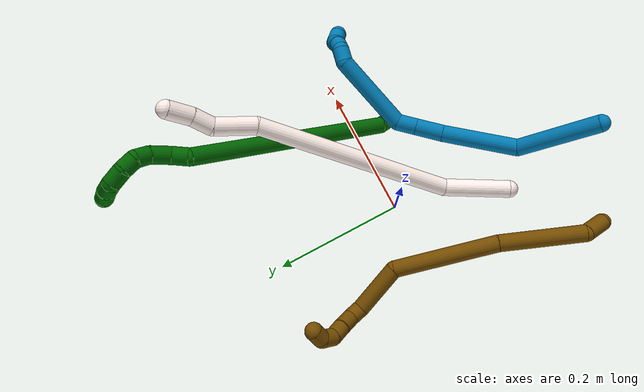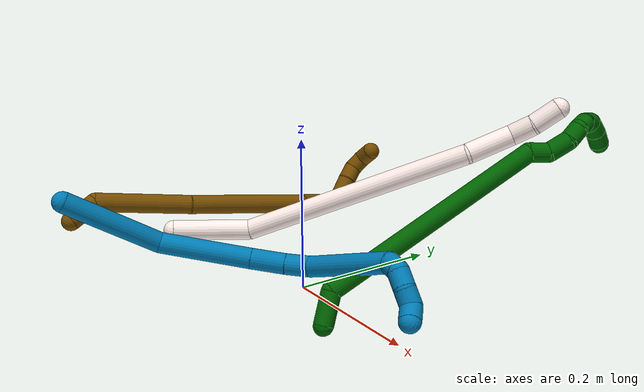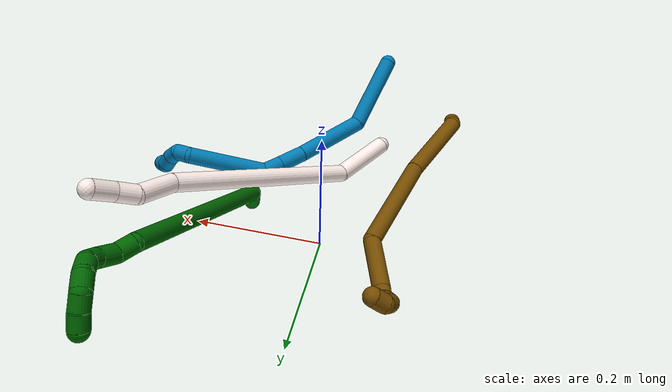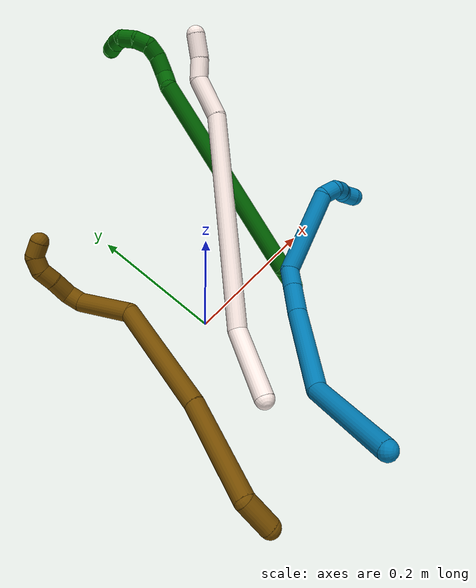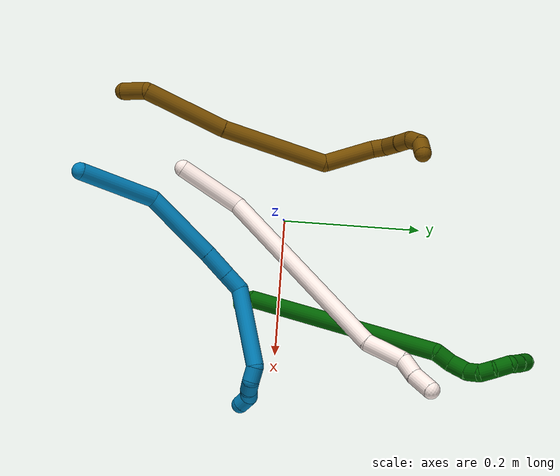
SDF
<sdf version="1.7">
 <world name="default">
  <model name="6">
   <static>0</static>
   <link name="6">
    <collision name="collision-cylinder-e_1_1_4">
     <pose>0.002577 0.004636 0.020138 -0.226278 0.124054 -0.014113</pose>
     <geometry><cylinder><radius>0.0125</radius><length>0.041649</length></cylinder></geometry>
     <surface>
      <friction><ode><mu>1.16</mu><mu2>1.16</mu2><slip1>0</slip1><slip2>0</slip2></ode></friction>
      <contact><ode><kp>1e+06</kp><kd>1</kd><max_vel>0</max_vel><min_depth>0.001</min_depth></ode></contact>
     </surface>
    </collision>
    <visual name="visual-cylinder-e_1_1_4">
     <pose>0.002577 0.004636 0.020138 -0.226278 0.124054 -0.014113</pose>
     <geometry><cylinder><radius>0.0125</radius><length>0.041649</length></cylinder></geometry>
     <material><ambient>0 0.392157 0.003922 1</ambient></material>
    </visual>
    <collision name="collision-cylinder-e_2_4_5">
     <pose>0.071267 0.116793 0.121629 -0.923064 0.455899 -0.22974</pose>
     <geometry><cylinder><radius>0.0125</radius><length>0.300334</length></cylinder></geometry>
     <surface>
      <friction><ode><mu>1.16</mu><mu2>1.16</mu2><slip1>0</slip1><slip2>0</slip2></ode></friction>
      <contact><ode><kp>1e+06</kp><kd>1</kd><max_vel>0</max_vel><min_depth>0.001</min_depth></ode></contact>
     </surface>
    </collision>
    <visual name="visual-cylinder-e_2_4_5">
     <pose>0.071267 0.116793 0.121629 -0.923064 0.455899 -0.22974</pose>
     <geometry><cylinder><radius>0.0125</radius><length>0.300334</length></cylinder></geometry>
     <material><ambient>0 0.392157 0.003922 1</ambient></material>
    </visual>
    <collision name="collision-cylinder-e_3_5_6">
     <pose>0.145441 0.23368 0.202651 -1.60614 0.710205 -0.733565</pose>
     <geometry><cylinder><radius>0.0125</radius><length>0.024722</length></cylinder></geometry>
     <surface>
      <friction><ode><mu>1.16</mu><mu2>1.16</mu2><slip1>0</slip1><slip2>0</slip2></ode></friction>
      <contact><ode><kp>1e+06</kp><kd>1</kd><max_vel>0</max_vel><min_depth>0.001</min_depth></ode></contact>
     </surface>
    </collision>
    <visual name="visual-cylinder-e_3_5_6">
     <pose>0.145441 0.23368 0.202651 -1.60614 0.710205 -0.733565</pose>
     <geometry><cylinder><radius>0.0125</radius><length>0.024722</length></cylinder></geometry>
     <material><ambient>0 0.392157 0.003922 1</ambient></material>
    </visual>
    <collision name="collision-cylinder-e_4_6_7">
     <pose>0.162188 0.252143 0.209539 -0.899912 0.642338 -0.318653</pose>
     <geometry><cylinder><radius>0.0125</radius><length>0.029006</length></cylinder></geometry>
     <surface>
      <friction><ode><mu>1.16</mu><mu2>1.16</mu2><slip1>0</slip1><slip2>0</slip2></ode></friction>
      <contact><ode><kp>1e+06</kp><kd>1</kd><max_vel>0</max_vel><min_depth>0.001</min_depth></ode></contact>
     </surface>
    </collision>
    <visual name="visual-cylinder-e_4_6_7">
     <pose>0.162188 0.252143 0.209539 -0.899912 0.642338 -0.318653</pose>
     <geometry><cylinder><radius>0.0125</radius><length>0.029006</length></cylinder></geometry>
     <material><ambient>0 0.392157 0.003922 1</ambient></material>
    </visual>
    <collision name="collision-cylinder-e_5_7_8">
     <pose>0.173909 0.267641 0.224087 -0.718083 0.302121 -0.114135</pose>
     <geometry><cylinder><radius>0.0125</radius><length>0.020386</length></cylinder></geometry>
     <surface>
      <friction><ode><mu>1.16</mu><mu2>1.16</mu2><slip1>0</slip1><slip2>0</slip2></ode></friction>
      <contact><ode><kp>1e+06</kp><kd>1</kd><max_vel>0</max_vel><min_depth>0.001</min_depth></ode></contact>
     </surface>
    </collision>
    <visual name="visual-cylinder-e_5_7_8">
     <pose>0.173909 0.267641 0.224087 -0.718083 0.302121 -0.114135</pose>
     <geometry><cylinder><radius>0.0125</radius><length>0.020386</length></cylinder></geometry>
     <material><ambient>0 0.392157 0.003922 1</ambient></material>
    </visual>
    <collision name="collision-cylinder-e_6_8_9">
     <pose>0.175725 0.283153 0.236109 -1.09505 -0.11824 0.072144</pose>
     <geometry><cylinder><radius>0.0125</radius><length>0.020638</length></cylinder></geometry>
     <surface>
      <friction><ode><mu>1.16</mu><mu2>1.16</mu2><slip1>0</slip1><slip2>0</slip2></ode></friction>
      <contact><ode><kp>1e+06</kp><kd>1</kd><max_vel>0</max_vel><min_depth>0.001</min_depth></ode></contact>
     </surface>
    </collision>
    <visual name="visual-cylinder-e_6_8_9">
     <pose>0.175725 0.283153 0.236109 -1.09505 -0.11824 0.072144</pose>
     <geometry><cylinder><radius>0.0125</radius><length>0.020638</length></cylinder></geometry>
     <material><ambient>0 0.392157 0.003922 1</ambient></material>
    </visual>
    <collision name="collision-cylinder-e_7_9_10">
     <pose>0.17197 0.303337 0.242158 -1.44896 -0.223603 0.198073</pose>
     <geometry><cylinder><radius>0.0125</radius><length>0.022886</length></cylinder></geometry>
     <surface>
      <friction><ode><mu>1.16</mu><mu2>1.16</mu2><slip1>0</slip1><slip2>0</slip2></ode></friction>
      <contact><ode><kp>1e+06</kp><kd>1</kd><max_vel>0</max_vel><min_depth>0.001</min_depth></ode></contact>
     </surface>
    </collision>
    <visual name="visual-cylinder-e_7_9_10">
     <pose>0.17197 0.303337 0.242158 -1.44896 -0.223603 0.198073</pose>
     <geometry><cylinder><radius>0.0125</radius><length>0.022886</length></cylinder></geometry>
     <material><ambient>0 0.392157 0.003922 1</ambient></material>
    </visual>
    <collision name="collision-cylinder-e_8_10_11">
     <pose>0.16783 0.322691 0.237966 -2.16128 -0.159522 0.297385</pose>
     <geometry><cylinder><radius>0.0125</radius><length>0.020186</length></cylinder></geometry>
     <surface>
      <friction><ode><mu>1.16</mu><mu2>1.16</mu2><slip1>0</slip1><slip2>0</slip2></ode></friction>
      <contact><ode><kp>1e+06</kp><kd>1</kd><max_vel>0</max_vel><min_depth>0.001</min_depth></ode></contact>
     </surface>
    </collision>
    <visual name="visual-cylinder-e_8_10_11">
     <pose>0.16783 0.322691 0.237966 -2.16128 -0.159522 0.297385</pose>
     <geometry><cylinder><radius>0.0125</radius><length>0.020186</length></cylinder></geometry>
     <material><ambient>0 0.392157 0.003922 1</ambient></material>
    </visual>
    <collision name="collision-cylinder-e_9_11_2">
     <pose>0.16393 0.338355 0.22593 -2.29149 -0.229475 0.498608</pose>
     <geometry><cylinder><radius>0.0125</radius><length>0.020192</length></cylinder></geometry>
     <surface>
      <friction><ode><mu>1.16</mu><mu2>1.16</mu2><slip1>0</slip1><slip2>0</slip2></ode></friction>
      <contact><ode><kp>1e+06</kp><kd>1</kd><max_vel>0</max_vel><min_depth>0.001</min_depth></ode></contact>
     </surface>
    </collision>
    <visual name="visual-cylinder-e_9_11_2">
     <pose>0.16393 0.338355 0.22593 -2.29149 -0.229475 0.498608</pose>
     <geometry><cylinder><radius>0.0125</radius><length>0.020192</length></cylinder></geometry>
     <material><ambient>0 0.392157 0.003922 1</ambient></material>
    </visual>
    <collision name="collision-sphere-2">
     <pose>0.161633 0.345742 0.219442 0 -0 0</pose>
     <geometry><sphere><radius>0.0125</radius></sphere></geometry>
     <surface>
      <friction><ode><mu>1.16</mu><mu2>1.16</mu2><slip1>0</slip1><slip2>0</slip2></ode></friction>
      <contact><ode><kp>1e+06</kp><kd>1</kd><max_vel>0</max_vel><min_depth>0.001</min_depth></ode></contact>
     </surface>
    </collision>
    <visual name="visual-sphere-2">
     <pose>0.161633 0.345742 0.219442 0 -0 0</pose>
     <geometry><sphere><radius>0.0125</radius></sphere></geometry>
     <material><ambient>0 0.392157 0.003922 1</ambient></material>
    </visual>
    <collision name="collision-sphere-11">
     <pose>0.166226 0.330968 0.232418 0 -0 0</pose>
     <geometry><sphere><radius>0.0125</radius></sphere></geometry>
     <surface>
      <friction><ode><mu>1.16</mu><mu2>1.16</mu2><slip1>0</slip1><slip2>0</slip2></ode></friction>
      <contact><ode><kp>1e+06</kp><kd>1</kd><max_vel>0</max_vel><min_depth>0.001</min_depth></ode></contact>
     </surface>
    </collision>
    <visual name="visual-sphere-11">
     <pose>0.166226 0.330968 0.232418 0 -0 0</pose>
     <geometry><sphere><radius>0.0125</radius></sphere></geometry>
     <material><ambient>0 0.392157 0.003922 1</ambient></material>
    </visual>
    <collision name="collision-sphere-10">
     <pose>0.169433 0.314413 0.243514 0 -0 0</pose>
     <geometry><sphere><radius>0.0125</radius></sphere></geometry>
     <surface>
      <friction><ode><mu>1.16</mu><mu2>1.16</mu2><slip1>0</slip1><slip2>0</slip2></ode></friction>
      <contact><ode><kp>1e+06</kp><kd>1</kd><max_vel>0</max_vel><min_depth>0.001</min_depth></ode></contact>
     </surface>
    </collision>
    <visual name="visual-sphere-10">
     <pose>0.169433 0.314413 0.243514 0 -0 0</pose>
     <geometry><sphere><radius>0.0125</radius></sphere></geometry>
     <material><ambient>0 0.392157 0.003922 1</ambient></material>
    </visual>
    <collision name="collision-sphere-9">
     <pose>0.174508 0.292262 0.240802 0 -0 0</pose>
     <geometry><sphere><radius>0.0125</radius></sphere></geometry>
     <surface>
      <friction><ode><mu>1.16</mu><mu2>1.16</mu2><slip1>0</slip1><slip2>0</slip2></ode></friction>
      <contact><ode><kp>1e+06</kp><kd>1</kd><max_vel>0</max_vel><min_depth>0.001</min_depth></ode></contact>
     </surface>
    </collision>
    <visual name="visual-sphere-9">
     <pose>0.174508 0.292262 0.240802 0 -0 0</pose>
     <geometry><sphere><radius>0.0125</radius></sphere></geometry>
     <material><ambient>0 0.392157 0.003922 1</ambient></material>
    </visual>
    <collision name="collision-sphere-4">
     <pose>0.005153 0.009272 0.040275 0 -0 0</pose>
     <geometry><sphere><radius>0.0125</radius></sphere></geometry>
     <surface>
      <friction><ode><mu>1.16</mu><mu2>1.16</mu2><slip1>0</slip1><slip2>0</slip2></ode></friction>
      <contact><ode><kp>1e+06</kp><kd>1</kd><max_vel>0</max_vel><min_depth>0.001</min_depth></ode></contact>
     </surface>
    </collision>
    <visual name="visual-sphere-4">
     <pose>0.005153 0.009272 0.040275 0 -0 0</pose>
     <geometry><sphere><radius>0.0125</radius></sphere></geometry>
     <material><ambient>0 0.392157 0.003922 1</ambient></material>
    </visual>
    <collision name="collision-sphere-1">
     <geometry><sphere><radius>0.0125</radius></sphere></geometry>
     <surface>
      <friction><ode><mu>1.16</mu><mu2>1.16</mu2><slip1>0</slip1><slip2>0</slip2></ode></friction>
      <contact><ode><kp>1e+06</kp><kd>1</kd><max_vel>0</max_vel><min_depth>0.001</min_depth></ode></contact>
     </surface>
    </collision>
    <visual name="visual-sphere-1">
     <geometry><sphere><radius>0.0125</radius></sphere></geometry>
     <material><ambient>0 0.392157 0.003922 1</ambient></material>
    </visual>
    <collision name="collision-sphere-8">
     <pose>0.176942 0.274044 0.231416 0 -0 0</pose>
     <geometry><sphere><radius>0.0125</radius></sphere></geometry>
     <surface>
      <friction><ode><mu>1.16</mu><mu2>1.16</mu2><slip1>0</slip1><slip2>0</slip2></ode></friction>
      <contact><ode><kp>1e+06</kp><kd>1</kd><max_vel>0</max_vel><min_depth>0.001</min_depth></ode></contact>
     </surface>
    </collision>
    <visual name="visual-sphere-8">
     <pose>0.176942 0.274044 0.231416 0 -0 0</pose>
     <geometry><sphere><radius>0.0125</radius></sphere></geometry>
     <material><ambient>0 0.392157 0.003922 1</ambient></material>
    </visual>
    <collision name="collision-sphere-5">
     <pose>0.137381 0.224314 0.202983 0 -0 0</pose>
     <geometry><sphere><radius>0.0125</radius></sphere></geometry>
     <surface>
      <friction><ode><mu>1.16</mu><mu2>1.16</mu2><slip1>0</slip1><slip2>0</slip2></ode></friction>
      <contact><ode><kp>1e+06</kp><kd>1</kd><max_vel>0</max_vel><min_depth>0.001</min_depth></ode></contact>
     </surface>
    </collision>
    <visual name="visual-sphere-5">
     <pose>0.137381 0.224314 0.202983 0 -0 0</pose>
     <geometry><sphere><radius>0.0125</radius></sphere></geometry>
     <material><ambient>0 0.392157 0.003922 1</ambient></material>
    </visual>
    <collision name="collision-sphere-6">
     <pose>0.1535 0.243047 0.20232 0 -0 0</pose>
     <geometry><sphere><radius>0.0125</radius></sphere></geometry>
     <surface>
      <friction><ode><mu>1.16</mu><mu2>1.16</mu2><slip1>0</slip1><slip2>0</slip2></ode></friction>
      <contact><ode><kp>1e+06</kp><kd>1</kd><max_vel>0</max_vel><min_depth>0.001</min_depth></ode></contact>
     </surface>
    </collision>
    <visual name="visual-sphere-6">
     <pose>0.1535 0.243047 0.20232 0 -0 0</pose>
     <geometry><sphere><radius>0.0125</radius></sphere></geometry>
     <material><ambient>0 0.392157 0.003922 1</ambient></material>
    </visual>
    <collision name="collision-sphere-7">
     <pose>0.170877 0.261238 0.216759 0 -0 0</pose>
     <geometry><sphere><radius>0.0125</radius></sphere></geometry>
     <surface>
      <friction><ode><mu>1.16</mu><mu2>1.16</mu2><slip1>0</slip1><slip2>0</slip2></ode></friction>
      <contact><ode><kp>1e+06</kp><kd>1</kd><max_vel>0</max_vel><min_depth>0.001</min_depth></ode></contact>
     </surface>
    </collision>
    <visual name="visual-sphere-7">
     <pose>0.170877 0.261238 0.216759 0 -0 0</pose>
     <geometry><sphere><radius>0.0125</radius></sphere></geometry>
     <material><ambient>0 0.392157 0.003922 1</ambient></material>
    </visual>
    <inertial>
     <pose>0.095234 0.159898 0.145609 0 -0 0</pose>
     <mass>0.5</mass>
     <inertia>
      <ixx>0.001551</ixx>
      <ixy>0</ixy>
      <ixz>0</ixz>
      <iyy>0.001089</iyy>
      <iyz>0</iyz>
      <izz>-0.002622</izz>
     </inertia>
    </inertial>
   </link>
   <pose>0.127208 -0.054743 0.011497 -0.252518 -0.296772 0.177598</pose>
  </model>
  <model name="9">
   <static>0</static>
   <link name="9">
    <collision name="collision-cylinder-e_1_1_4">
     <pose>0.020699 0.021693 -0.052297 -2.74839 0.350505 -1.45343</pose>
     <geometry><cylinder><radius>0.0125</radius><length>0.120565</length></cylinder></geometry>
     <surface>
      <friction><ode><mu>1.16</mu><mu2>1.16</mu2><slip1>0</slip1><slip2>0</slip2></ode></friction>
      <contact><ode><kp>1e+06</kp><kd>1</kd><max_vel>0</max_vel><min_depth>0.001</min_depth></ode></contact>
     </surface>
    </collision>
    <visual name="visual-cylinder-e_1_1_4">
     <pose>0.020699 0.021693 -0.052297 -2.74839 0.350505 -1.45343</pose>
     <geometry><cylinder><radius>0.0125</radius><length>0.120565</length></cylinder></geometry>
     <material><ambient>0 0.490196 0.709804 1</ambient></material>
    </visual>
    <collision name="collision-cylinder-e_2_4_5">
     <pose>0.068956 0.083285 -0.131057 -2.15644 0.522263 -0.923958</pose>
     <geometry><cylinder><radius>0.0125</radius><length>0.110485</length></cylinder></geometry>
     <surface>
      <friction><ode><mu>1.16</mu><mu2>1.16</mu2><slip1>0</slip1><slip2>0</slip2></ode></friction>
      <contact><ode><kp>1e+06</kp><kd>1</kd><max_vel>0</max_vel><min_depth>0.001</min_depth></ode></contact>
     </surface>
    </collision>
    <visual name="visual-cylinder-e_2_4_5">
     <pose>0.068956 0.083285 -0.131057 -2.15644 0.522263 -0.923958</pose>
     <geometry><cylinder><radius>0.0125</radius><length>0.110485</length></cylinder></geometry>
     <material><ambient>0 0.490196 0.709804 1</ambient></material>
    </visual>
    <collision name="collision-cylinder-e_3_5_6">
     <pose>0.106951 0.138283 -0.166123 -2.08862 0.540909 -0.890192</pose>
     <geometry><cylinder><radius>0.0125</radius><length>0.040541</length></cylinder></geometry>
     <surface>
      <friction><ode><mu>1.16</mu><mu2>1.16</mu2><slip1>0</slip1><slip2>0</slip2></ode></friction>
      <contact><ode><kp>1e+06</kp><kd>1</kd><max_vel>0</max_vel><min_depth>0.001</min_depth></ode></contact>
     </surface>
    </collision>
    <visual name="visual-cylinder-e_3_5_6">
     <pose>0.106951 0.138283 -0.166123 -2.08862 0.540909 -0.890192</pose>
     <geometry><cylinder><radius>0.0125</radius><length>0.040541</length></cylinder></geometry>
     <material><ambient>0 0.490196 0.709804 1</ambient></material>
    </visual>
    <collision name="collision-cylinder-e_4_6_7">
     <pose>0.124481 0.164813 -0.180651 -2.04913 0.50348 -0.800465</pose>
     <geometry><cylinder><radius>0.0125</radius><length>0.029401</length></cylinder></geometry>
     <surface>
      <friction><ode><mu>1.16</mu><mu2>1.16</mu2><slip1>0</slip1><slip2>0</slip2></ode></friction>
      <contact><ode><kp>1e+06</kp><kd>1</kd><max_vel>0</max_vel><min_depth>0.001</min_depth></ode></contact>
     </surface>
    </collision>
    <visual name="visual-cylinder-e_4_6_7">
     <pose>0.124481 0.164813 -0.180651 -2.04913 0.50348 -0.800465</pose>
     <geometry><cylinder><radius>0.0125</radius><length>0.029401</length></cylinder></geometry>
     <material><ambient>0 0.490196 0.709804 1</ambient></material>
    </visual>
    <collision name="collision-cylinder-e_5_7_8">
     <pose>0.164771 0.223013 -0.174201 -1.31209 0.601391 -0.46865</pose>
     <geometry><cylinder><radius>0.0125</radius><length>0.117347</length></cylinder></geometry>
     <surface>
      <friction><ode><mu>1.16</mu><mu2>1.16</mu2><slip1>0</slip1><slip2>0</slip2></ode></friction>
      <contact><ode><kp>1e+06</kp><kd>1</kd><max_vel>0</max_vel><min_depth>0.001</min_depth></ode></contact>
     </surface>
    </collision>
    <visual name="visual-cylinder-e_5_7_8">
     <pose>0.164771 0.223013 -0.174201 -1.31209 0.601391 -0.46865</pose>
     <geometry><cylinder><radius>0.0125</radius><length>0.117347</length></cylinder></geometry>
     <material><ambient>0 0.490196 0.709804 1</ambient></material>
    </visual>
    <collision name="collision-cylinder-e_6_8_9">
     <pose>0.207527 0.273092 -0.15798 -0.710781 1.08296 -0.439248</pose>
     <geometry><cylinder><radius>0.0125</radius><length>0.021645</length></cylinder></geometry>
     <surface>
      <friction><ode><mu>1.16</mu><mu2>1.16</mu2><slip1>0</slip1><slip2>0</slip2></ode></friction>
      <contact><ode><kp>1e+06</kp><kd>1</kd><max_vel>0</max_vel><min_depth>0.001</min_depth></ode></contact>
     </surface>
    </collision>
    <visual name="visual-cylinder-e_6_8_9">
     <pose>0.207527 0.273092 -0.15798 -0.710781 1.08296 -0.439248</pose>
     <geometry><cylinder><radius>0.0125</radius><length>0.021645</length></cylinder></geometry>
     <material><ambient>0 0.490196 0.709804 1</ambient></material>
    </visual>
    <collision name="collision-cylinder-e_7_9_10">
     <pose>0.226886 0.275099 -0.155678 2.44024 1.36761 2.2978</pose>
     <geometry><cylinder><radius>0.0125</radius><length>0.020009</length></cylinder></geometry>
     <surface>
      <friction><ode><mu>1.16</mu><mu2>1.16</mu2><slip1>0</slip1><slip2>0</slip2></ode></friction>
      <contact><ode><kp>1e+06</kp><kd>1</kd><max_vel>0</max_vel><min_depth>0.001</min_depth></ode></contact>
     </surface>
    </collision>
    <visual name="visual-cylinder-e_7_9_10">
     <pose>0.226886 0.275099 -0.155678 2.44024 1.36761 2.2978</pose>
     <geometry><cylinder><radius>0.0125</radius><length>0.020009</length></cylinder></geometry>
     <material><ambient>0 0.490196 0.709804 1</ambient></material>
    </visual>
    <collision name="collision-cylinder-e_8_10_11">
     <pose>0.245575 0.271846 -0.16137 2.70219 1.09462 2.43912</pose>
     <geometry><cylinder><radius>0.0125</radius><length>0.020006</length></cylinder></geometry>
     <surface>
      <friction><ode><mu>1.16</mu><mu2>1.16</mu2><slip1>0</slip1><slip2>0</slip2></ode></friction>
      <contact><ode><kp>1e+06</kp><kd>1</kd><max_vel>0</max_vel><min_depth>0.001</min_depth></ode></contact>
     </surface>
    </collision>
    <visual name="visual-cylinder-e_8_10_11">
     <pose>0.245575 0.271846 -0.16137 2.70219 1.09462 2.43912</pose>
     <geometry><cylinder><radius>0.0125</radius><length>0.020006</length></cylinder></geometry>
     <material><ambient>0 0.490196 0.709804 1</ambient></material>
    </visual>
    <collision name="collision-cylinder-e_9_11_2">
     <pose>0.263292 0.266526 -0.162243 0.799445 1.08151 0.496866</pose>
     <geometry><cylinder><radius>0.0125</radius><length>0.020001</length></cylinder></geometry>
     <surface>
      <friction><ode><mu>1.16</mu><mu2>1.16</mu2><slip1>0</slip1><slip2>0</slip2></ode></friction>
      <contact><ode><kp>1e+06</kp><kd>1</kd><max_vel>0</max_vel><min_depth>0.001</min_depth></ode></contact>
     </surface>
    </collision>
    <visual name="visual-cylinder-e_9_11_2">
     <pose>0.263292 0.266526 -0.162243 0.799445 1.08151 0.496866</pose>
     <geometry><cylinder><radius>0.0125</radius><length>0.020001</length></cylinder></geometry>
     <material><ambient>0 0.490196 0.709804 1</ambient></material>
    </visual>
    <collision name="collision-sphere-2">
     <pose>0.27212 0.263156 -0.158966 0 -0 0</pose>
     <geometry><sphere><radius>0.0125</radius></sphere></geometry>
     <surface>
      <friction><ode><mu>1.16</mu><mu2>1.16</mu2><slip1>0</slip1><slip2>0</slip2></ode></friction>
      <contact><ode><kp>1e+06</kp><kd>1</kd><max_vel>0</max_vel><min_depth>0.001</min_depth></ode></contact>
     </surface>
    </collision>
    <visual name="visual-sphere-2">
     <pose>0.27212 0.263156 -0.158966 0 -0 0</pose>
     <geometry><sphere><radius>0.0125</radius></sphere></geometry>
     <material><ambient>0 0.490196 0.709804 1</ambient></material>
    </visual>
    <collision name="collision-sphere-11">
     <pose>0.254465 0.269895 -0.165519 0 -0 0</pose>
     <geometry><sphere><radius>0.0125</radius></sphere></geometry>
     <surface>
      <friction><ode><mu>1.16</mu><mu2>1.16</mu2><slip1>0</slip1><slip2>0</slip2></ode></friction>
      <contact><ode><kp>1e+06</kp><kd>1</kd><max_vel>0</max_vel><min_depth>0.001</min_depth></ode></contact>
     </surface>
    </collision>
    <visual name="visual-sphere-11">
     <pose>0.254465 0.269895 -0.165519 0 -0 0</pose>
     <geometry><sphere><radius>0.0125</radius></sphere></geometry>
     <material><ambient>0 0.490196 0.709804 1</ambient></material>
    </visual>
    <collision name="collision-sphere-10">
     <pose>0.236685 0.273797 -0.15722 0 -0 0</pose>
     <geometry><sphere><radius>0.0125</radius></sphere></geometry>
     <surface>
      <friction><ode><mu>1.16</mu><mu2>1.16</mu2><slip1>0</slip1><slip2>0</slip2></ode></friction>
      <contact><ode><kp>1e+06</kp><kd>1</kd><max_vel>0</max_vel><min_depth>0.001</min_depth></ode></contact>
     </surface>
    </collision>
    <visual name="visual-sphere-10">
     <pose>0.236685 0.273797 -0.15722 0 -0 0</pose>
     <geometry><sphere><radius>0.0125</radius></sphere></geometry>
     <material><ambient>0 0.490196 0.709804 1</ambient></material>
    </visual>
    <collision name="collision-sphere-9">
     <pose>0.217087 0.276402 -0.154136 0 -0 0</pose>
     <geometry><sphere><radius>0.0125</radius></sphere></geometry>
     <surface>
      <friction><ode><mu>1.16</mu><mu2>1.16</mu2><slip1>0</slip1><slip2>0</slip2></ode></friction>
      <contact><ode><kp>1e+06</kp><kd>1</kd><max_vel>0</max_vel><min_depth>0.001</min_depth></ode></contact>
     </surface>
    </collision>
    <visual name="visual-sphere-9">
     <pose>0.217087 0.276402 -0.154136 0 -0 0</pose>
     <geometry><sphere><radius>0.0125</radius></sphere></geometry>
     <material><ambient>0 0.490196 0.709804 1</ambient></material>
    </visual>
    <collision name="collision-sphere-4">
     <pose>0.041399 0.043386 -0.104594 0 -0 0</pose>
     <geometry><sphere><radius>0.0125</radius></sphere></geometry>
     <surface>
      <friction><ode><mu>1.16</mu><mu2>1.16</mu2><slip1>0</slip1><slip2>0</slip2></ode></friction>
      <contact><ode><kp>1e+06</kp><kd>1</kd><max_vel>0</max_vel><min_depth>0.001</min_depth></ode></contact>
     </surface>
    </collision>
    <visual name="visual-sphere-4">
     <pose>0.041399 0.043386 -0.104594 0 -0 0</pose>
     <geometry><sphere><radius>0.0125</radius></sphere></geometry>
     <material><ambient>0 0.490196 0.709804 1</ambient></material>
    </visual>
    <collision name="collision-sphere-1">
     <geometry><sphere><radius>0.0125</radius></sphere></geometry>
     <surface>
      <friction><ode><mu>1.16</mu><mu2>1.16</mu2><slip1>0</slip1><slip2>0</slip2></ode></friction>
      <contact><ode><kp>1e+06</kp><kd>1</kd><max_vel>0</max_vel><min_depth>0.001</min_depth></ode></contact>
     </surface>
    </collision>
    <visual name="visual-sphere-1">
     <geometry><sphere><radius>0.0125</radius></sphere></geometry>
     <material><ambient>0 0.490196 0.709804 1</ambient></material>
    </visual>
    <collision name="collision-sphere-8">
     <pose>0.197967 0.269783 -0.161824 0 -0 0</pose>
     <geometry><sphere><radius>0.0125</radius></sphere></geometry>
     <surface>
      <friction><ode><mu>1.16</mu><mu2>1.16</mu2><slip1>0</slip1><slip2>0</slip2></ode></friction>
      <contact><ode><kp>1e+06</kp><kd>1</kd><max_vel>0</max_vel><min_depth>0.001</min_depth></ode></contact>
     </surface>
    </collision>
    <visual name="visual-sphere-8">
     <pose>0.197967 0.269783 -0.161824 0 -0 0</pose>
     <geometry><sphere><radius>0.0125</radius></sphere></geometry>
     <material><ambient>0 0.490196 0.709804 1</ambient></material>
    </visual>
    <collision name="collision-sphere-5">
     <pose>0.096513 0.123185 -0.157521 0 -0 0</pose>
     <geometry><sphere><radius>0.0125</radius></sphere></geometry>
     <surface>
      <friction><ode><mu>1.16</mu><mu2>1.16</mu2><slip1>0</slip1><slip2>0</slip2></ode></friction>
      <contact><ode><kp>1e+06</kp><kd>1</kd><max_vel>0</max_vel><min_depth>0.001</min_depth></ode></contact>
     </surface>
    </collision>
    <visual name="visual-sphere-5">
     <pose>0.096513 0.123185 -0.157521 0 -0 0</pose>
     <geometry><sphere><radius>0.0125</radius></sphere></geometry>
     <material><ambient>0 0.490196 0.709804 1</ambient></material>
    </visual>
    <collision name="collision-sphere-6">
     <pose>0.117388 0.153382 -0.174724 0 -0 0</pose>
     <geometry><sphere><radius>0.0125</radius></sphere></geometry>
     <surface>
      <friction><ode><mu>1.16</mu><mu2>1.16</mu2><slip1>0</slip1><slip2>0</slip2></ode></friction>
      <contact><ode><kp>1e+06</kp><kd>1</kd><max_vel>0</max_vel><min_depth>0.001</min_depth></ode></contact>
     </surface>
    </collision>
    <visual name="visual-sphere-6">
     <pose>0.117388 0.153382 -0.174724 0 -0 0</pose>
     <geometry><sphere><radius>0.0125</radius></sphere></geometry>
     <material><ambient>0 0.490196 0.709804 1</ambient></material>
    </visual>
    <collision name="collision-sphere-7">
     <pose>0.131574 0.176244 -0.186578 0 -0 0</pose>
     <geometry><sphere><radius>0.0125</radius></sphere></geometry>
     <surface>
      <friction><ode><mu>1.16</mu><mu2>1.16</mu2><slip1>0</slip1><slip2>0</slip2></ode></friction>
      <contact><ode><kp>1e+06</kp><kd>1</kd><max_vel>0</max_vel><min_depth>0.001</min_depth></ode></contact>
     </surface>
    </collision>
    <visual name="visual-sphere-7">
     <pose>0.131574 0.176244 -0.186578 0 -0 0</pose>
     <geometry><sphere><radius>0.0125</radius></sphere></geometry>
     <material><ambient>0 0.490196 0.709804 1</ambient></material>
    </visual>
    <inertial>
     <pose>0.113312 0.141248 -0.132562 0 -0 0</pose>
     <mass>0.5</mass>
     <inertia>
      <ixx>-7.2e-05</ixx>
      <ixy>0</ixy>
      <ixz>0</ixz>
      <iyy>-0.000184</iyy>
      <iyz>0</iyz>
      <izz>-0.000469</izz>
     </inertia>
    </inertial>
   </link>
   <pose>-0.0465 -0.288502 0.161317 0.757911 0.562228 -0.191261</pose>
  </model>
  <model name="11">
   <static>0</static>
   <link name="11">
    <collision name="collision-cylinder-e_1_1_4">
     <pose>0.004608 0.014358 -0.044654 -2.8305 0.097924 -0.605733</pose>
     <geometry><cylinder><radius>0.0125</radius><length>0.094263</length></cylinder></geometry>
     <surface>
      <friction><ode><mu>1.16</mu><mu2>1.16</mu2><slip1>0</slip1><slip2>0</slip2></ode></friction>
      <contact><ode><kp>1e+06</kp><kd>1</kd><max_vel>0</max_vel><min_depth>0.001</min_depth></ode></contact>
     </surface>
    </collision>
    <visual name="visual-cylinder-e_1_1_4">
     <pose>0.004608 0.014358 -0.044654 -2.8305 0.097924 -0.605733</pose>
     <geometry><cylinder><radius>0.0125</radius><length>0.094263</length></cylinder></geometry>
     <material><ambient>1 0.933333 0.909804 1</ambient></material>
    </visual>
    <collision name="collision-cylinder-e_2_4_5">
     <pose>0.072988 0.10099 -0.194598 -2.54003 0.463137 -1.29995</pose>
     <geometry><cylinder><radius>0.0125</radius><length>0.285492</length></cylinder></geometry>
     <surface>
      <friction><ode><mu>1.16</mu><mu2>1.16</mu2><slip1>0</slip1><slip2>0</slip2></ode></friction>
      <contact><ode><kp>1e+06</kp><kd>1</kd><max_vel>0</max_vel><min_depth>0.001</min_depth></ode></contact>
     </surface>
    </collision>
    <visual name="visual-cylinder-e_2_4_5">
     <pose>0.072988 0.10099 -0.194598 -2.54003 0.463137 -1.29995</pose>
     <geometry><cylinder><radius>0.0125</radius><length>0.285492</length></cylinder></geometry>
     <material><ambient>1 0.933333 0.909804 1</ambient></material>
    </visual>
    <collision name="collision-cylinder-e_3_5_6">
     <pose>0.140717 0.191745 -0.321599 -2.43642 0.137858 -0.370935</pose>
     <geometry><cylinder><radius>0.0125</radius><length>0.05757</length></cylinder></geometry>
     <surface>
      <friction><ode><mu>1.16</mu><mu2>1.16</mu2><slip1>0</slip1><slip2>0</slip2></ode></friction>
      <contact><ode><kp>1e+06</kp><kd>1</kd><max_vel>0</max_vel><min_depth>0.001</min_depth></ode></contact>
     </surface>
    </collision>
    <visual name="visual-cylinder-e_3_5_6">
     <pose>0.140717 0.191745 -0.321599 -2.43642 0.137858 -0.370935</pose>
     <geometry><cylinder><radius>0.0125</radius><length>0.05757</length></cylinder></geometry>
     <material><ambient>1 0.933333 0.909804 1</ambient></material>
    </visual>
    <collision name="collision-cylinder-e_4_6_7">
     <pose>0.153088 0.217859 -0.352255 -2.43512 0.621135 -1.43256</pose>
     <geometry><cylinder><radius>0.0125</radius><length>0.02892</length></cylinder></geometry>
     <surface>
      <friction><ode><mu>1.16</mu><mu2>1.16</mu2><slip1>0</slip1><slip2>0</slip2></ode></friction>
      <contact><ode><kp>1e+06</kp><kd>1</kd><max_vel>0</max_vel><min_depth>0.001</min_depth></ode></contact>
     </surface>
    </collision>
    <visual name="visual-cylinder-e_4_6_7">
     <pose>0.153088 0.217859 -0.352255 -2.43512 0.621135 -1.43256</pose>
     <geometry><cylinder><radius>0.0125</radius><length>0.02892</length></cylinder></geometry>
     <material><ambient>1 0.933333 0.909804 1</ambient></material>
    </visual>
    <collision name="collision-cylinder-e_5_7_2">
     <pose>0.168838 0.237211 -0.370881 -2.2613 0.449612 -0.904029</pose>
     <geometry><cylinder><radius>0.0125</radius><length>0.033755</length></cylinder></geometry>
     <surface>
      <friction><ode><mu>1.16</mu><mu2>1.16</mu2><slip1>0</slip1><slip2>0</slip2></ode></friction>
      <contact><ode><kp>1e+06</kp><kd>1</kd><max_vel>0</max_vel><min_depth>0.001</min_depth></ode></contact>
     </surface>
    </collision>
    <visual name="visual-cylinder-e_5_7_2">
     <pose>0.168838 0.237211 -0.370881 -2.2613 0.449612 -0.904029</pose>
     <geometry><cylinder><radius>0.0125</radius><length>0.033755</length></cylinder></geometry>
     <material><ambient>1 0.933333 0.909804 1</ambient></material>
    </visual>
    <collision name="collision-sphere-2">
     <pose>0.176173 0.248929 -0.380563 0 -0 0</pose>
     <geometry><sphere><radius>0.0125</radius></sphere></geometry>
     <surface>
      <friction><ode><mu>1.16</mu><mu2>1.16</mu2><slip1>0</slip1><slip2>0</slip2></ode></friction>
      <contact><ode><kp>1e+06</kp><kd>1</kd><max_vel>0</max_vel><min_depth>0.001</min_depth></ode></contact>
     </surface>
    </collision>
    <visual name="visual-sphere-2">
     <pose>0.176173 0.248929 -0.380563 0 -0 0</pose>
     <geometry><sphere><radius>0.0125</radius></sphere></geometry>
     <material><ambient>1 0.933333 0.909804 1</ambient></material>
    </visual>
    <collision name="collision-sphere-7">
     <pose>0.161503 0.225492 -0.3612 0 -0 0</pose>
     <geometry><sphere><radius>0.0125</radius></sphere></geometry>
     <surface>
      <friction><ode><mu>1.16</mu><mu2>1.16</mu2><slip1>0</slip1><slip2>0</slip2></ode></friction>
      <contact><ode><kp>1e+06</kp><kd>1</kd><max_vel>0</max_vel><min_depth>0.001</min_depth></ode></contact>
     </surface>
    </collision>
    <visual name="visual-sphere-7">
     <pose>0.161503 0.225492 -0.3612 0 -0 0</pose>
     <geometry><sphere><radius>0.0125</radius></sphere></geometry>
     <material><ambient>1 0.933333 0.909804 1</ambient></material>
    </visual>
    <collision name="collision-sphere-6">
     <pose>0.144672 0.210226 -0.343311 0 -0 0</pose>
     <geometry><sphere><radius>0.0125</radius></sphere></geometry>
     <surface>
      <friction><ode><mu>1.16</mu><mu2>1.16</mu2><slip1>0</slip1><slip2>0</slip2></ode></friction>
      <contact><ode><kp>1e+06</kp><kd>1</kd><max_vel>0</max_vel><min_depth>0.001</min_depth></ode></contact>
     </surface>
    </collision>
    <visual name="visual-sphere-6">
     <pose>0.144672 0.210226 -0.343311 0 -0 0</pose>
     <geometry><sphere><radius>0.0125</radius></sphere></geometry>
     <material><ambient>1 0.933333 0.909804 1</ambient></material>
    </visual>
    <collision name="collision-sphere-5">
     <pose>0.136761 0.173265 -0.299887 0 -0 0</pose>
     <geometry><sphere><radius>0.0125</radius></sphere></geometry>
     <surface>
      <friction><ode><mu>1.16</mu><mu2>1.16</mu2><slip1>0</slip1><slip2>0</slip2></ode></friction>
      <contact><ode><kp>1e+06</kp><kd>1</kd><max_vel>0</max_vel><min_depth>0.001</min_depth></ode></contact>
     </surface>
    </collision>
    <visual name="visual-sphere-5">
     <pose>0.136761 0.173265 -0.299887 0 -0 0</pose>
     <geometry><sphere><radius>0.0125</radius></sphere></geometry>
     <material><ambient>1 0.933333 0.909804 1</ambient></material>
    </visual>
    <collision name="collision-sphere-1">
     <geometry><sphere><radius>0.0125</radius></sphere></geometry>
     <surface>
      <friction><ode><mu>1.16</mu><mu2>1.16</mu2><slip1>0</slip1><slip2>0</slip2></ode></friction>
      <contact><ode><kp>1e+06</kp><kd>1</kd><max_vel>0</max_vel><min_depth>0.001</min_depth></ode></contact>
     </surface>
    </collision>
    <visual name="visual-sphere-1">
     <geometry><sphere><radius>0.0125</radius></sphere></geometry>
     <material><ambient>1 0.933333 0.909804 1</ambient></material>
    </visual>
    <collision name="collision-sphere-4">
     <pose>0.009216 0.028716 -0.089309 0 -0 0</pose>
     <geometry><sphere><radius>0.0125</radius></sphere></geometry>
     <surface>
      <friction><ode><mu>1.16</mu><mu2>1.16</mu2><slip1>0</slip1><slip2>0</slip2></ode></friction>
      <contact><ode><kp>1e+06</kp><kd>1</kd><max_vel>0</max_vel><min_depth>0.001</min_depth></ode></contact>
     </surface>
    </collision>
    <visual name="visual-sphere-4">
     <pose>0.009216 0.028716 -0.089309 0 -0 0</pose>
     <geometry><sphere><radius>0.0125</radius></sphere></geometry>
     <material><ambient>1 0.933333 0.909804 1</ambient></material>
    </visual>
    <inertial>
     <pose>0.078999 0.111063 -0.201972 0 -0 0</pose>
     <mass>0.5</mass>
     <inertia>
      <ixx>-0.001175</ixx>
      <ixy>0</ixy>
      <ixz>0</ixz>
      <iyy>-0.001739</iyy>
      <iyz>0</iyz>
      <izz>-0.001941</izz>
     </inertia>
    </inertial>
   </link>
   <pose>-0.063167 -0.149595 0.093062 1.1826 -0.483033 -0.399195</pose>
  </model>
  <model name="12">
   <static>0</static>
   <link name="12">
    <collision name="collision-cylinder-e_1_1_4">
     <pose>-0.0014 0.004921 0.018777 -0.256322 -0.071985 0.00928</pose>
     <geometry><cylinder><radius>0.0125</radius><length>0.038924</length></cylinder></geometry>
     <surface>
      <friction><ode><mu>1.16</mu><mu2>1.16</mu2><slip1>0</slip1><slip2>0</slip2></ode></friction>
      <contact><ode><kp>1e+06</kp><kd>1</kd><max_vel>0</max_vel><min_depth>0.001</min_depth></ode></contact>
     </surface>
    </collision>
    <visual name="visual-cylinder-e_1_1_4">
     <pose>-0.0014 0.004921 0.018777 -0.256322 -0.071985 0.00928</pose>
     <geometry><cylinder><radius>0.0125</radius><length>0.038924</length></cylinder></geometry>
     <material><ambient>0.466667 0.301961 0 1</ambient></material>
    </visual>
    <collision name="collision-cylinder-e_2_4_5">
     <pose>-0.004355 0.060582 0.071916 -0.975526 -0.025377 0.013464</pose>
     <geometry><cylinder><radius>0.0125</radius><length>0.122598</length></cylinder></geometry>
     <surface>
      <friction><ode><mu>1.16</mu><mu2>1.16</mu2><slip1>0</slip1><slip2>0</slip2></ode></friction>
      <contact><ode><kp>1e+06</kp><kd>1</kd><max_vel>0</max_vel><min_depth>0.001</min_depth></ode></contact>
     </surface>
    </collision>
    <visual name="visual-cylinder-e_2_4_5">
     <pose>-0.004355 0.060582 0.071916 -0.975526 -0.025377 0.013464</pose>
     <geometry><cylinder><radius>0.0125</radius><length>0.122598</length></cylinder></geometry>
     <material><ambient>0.466667 0.301961 0 1</ambient></material>
    </visual>
    <collision name="collision-cylinder-e_3_5_6">
     <pose>-0.016668 0.171775 0.152268 -0.920449 -0.140693 0.069832</pose>
     <geometry><cylinder><radius>0.0125</radius><length>0.153435</length></cylinder></geometry>
     <surface>
      <friction><ode><mu>1.16</mu><mu2>1.16</mu2><slip1>0</slip1><slip2>0</slip2></ode></friction>
      <contact><ode><kp>1e+06</kp><kd>1</kd><max_vel>0</max_vel><min_depth>0.001</min_depth></ode></contact>
     </surface>
    </collision>
    <visual name="visual-cylinder-e_3_5_6">
     <pose>-0.016668 0.171775 0.152268 -0.920449 -0.140693 0.069832</pose>
     <geometry><cylinder><radius>0.0125</radius><length>0.153435</length></cylinder></geometry>
     <material><ambient>0.466667 0.301961 0 1</ambient></material>
    </visual>
    <collision name="collision-cylinder-e_4_6_7">
     <pose>-0.052948 0.250854 0.218295 -0.748886 -0.750714 0.307261</pose>
     <geometry><cylinder><radius>0.0125</radius><length>0.074825</length></cylinder></geometry>
     <surface>
      <friction><ode><mu>1.16</mu><mu2>1.16</mu2><slip1>0</slip1><slip2>0</slip2></ode></friction>
      <contact><ode><kp>1e+06</kp><kd>1</kd><max_vel>0</max_vel><min_depth>0.001</min_depth></ode></contact>
     </surface>
    </collision>
    <visual name="visual-cylinder-e_4_6_7">
     <pose>-0.052948 0.250854 0.218295 -0.748886 -0.750714 0.307261</pose>
     <geometry><cylinder><radius>0.0125</radius><length>0.074825</length></cylinder></geometry>
     <material><ambient>0.466667 0.301961 0 1</ambient></material>
    </visual>
    <collision name="collision-cylinder-e_5_7_8">
     <pose>-0.082297 0.27293 0.247058 -0.376733 -0.38729 0.07473</pose>
     <geometry><cylinder><radius>0.0125</radius><length>0.020269</length></cylinder></geometry>
     <surface>
      <friction><ode><mu>1.16</mu><mu2>1.16</mu2><slip1>0</slip1><slip2>0</slip2></ode></friction>
      <contact><ode><kp>1e+06</kp><kd>1</kd><max_vel>0</max_vel><min_depth>0.001</min_depth></ode></contact>
     </surface>
    </collision>
    <visual name="visual-cylinder-e_5_7_8">
     <pose>-0.082297 0.27293 0.247058 -0.376733 -0.38729 0.07473</pose>
     <geometry><cylinder><radius>0.0125</radius><length>0.020269</length></cylinder></geometry>
     <material><ambient>0.466667 0.301961 0 1</ambient></material>
    </visual>
    <collision name="collision-cylinder-e_6_8_9">
     <pose>-0.086014 0.274368 0.269518 0.145634 0.007909 0.000577</pose>
     <geometry><cylinder><radius>0.0125</radius><length>0.027764</length></cylinder></geometry>
     <surface>
      <friction><ode><mu>1.16</mu><mu2>1.16</mu2><slip1>0</slip1><slip2>0</slip2></ode></friction>
      <contact><ode><kp>1e+06</kp><kd>1</kd><max_vel>0</max_vel><min_depth>0.001</min_depth></ode></contact>
     </surface>
    </collision>
    <visual name="visual-cylinder-e_6_8_9">
     <pose>-0.086014 0.274368 0.269518 0.145634 0.007909 0.000577</pose>
     <geometry><cylinder><radius>0.0125</radius><length>0.027764</length></cylinder></geometry>
     <material><ambient>0.466667 0.301961 0 1</ambient></material>
    </visual>
    <collision name="collision-cylinder-e_7_9_10">
     <pose>-0.08699 0.271426 0.293889 0.086984 -0.101276 -0.004411</pose>
     <geometry><cylinder><radius>0.0125</radius><length>0.021464</length></cylinder></geometry>
     <surface>
      <friction><ode><mu>1.16</mu><mu2>1.16</mu2><slip1>0</slip1><slip2>0</slip2></ode></friction>
      <contact><ode><kp>1e+06</kp><kd>1</kd><max_vel>0</max_vel><min_depth>0.001</min_depth></ode></contact>
     </surface>
    </collision>
    <visual name="visual-cylinder-e_7_9_10">
     <pose>-0.08699 0.271426 0.293889 0.086984 -0.101276 -0.004411</pose>
     <geometry><cylinder><radius>0.0125</radius><length>0.021464</length></cylinder></geometry>
     <material><ambient>0.466667 0.301961 0 1</ambient></material>
    </visual>
    <collision name="collision-cylinder-e_8_10_11">
     <pose>-0.084915 0.272118 0.313961 -0.169948 0.31878 -0.027384</pose>
     <geometry><cylinder><radius>0.0125</radius><length>0.020162</length></cylinder></geometry>
     <surface>
      <friction><ode><mu>1.16</mu><mu2>1.16</mu2><slip1>0</slip1><slip2>0</slip2></ode></friction>
      <contact><ode><kp>1e+06</kp><kd>1</kd><max_vel>0</max_vel><min_depth>0.001</min_depth></ode></contact>
     </surface>
    </collision>
    <visual name="visual-cylinder-e_8_10_11">
     <pose>-0.084915 0.272118 0.313961 -0.169948 0.31878 -0.027384</pose>
     <geometry><cylinder><radius>0.0125</radius><length>0.020162</length></cylinder></geometry>
     <material><ambient>0.466667 0.301961 0 1</ambient></material>
    </visual>
    <collision name="collision-cylinder-e_9_11_2">
     <pose>-0.072939 0.275391 0.328416 -0.318386 1.03076 -0.181389</pose>
     <geometry><cylinder><radius>0.0125</radius><length>0.02056</length></cylinder></geometry>
     <surface>
      <friction><ode><mu>1.16</mu><mu2>1.16</mu2><slip1>0</slip1><slip2>0</slip2></ode></friction>
      <contact><ode><kp>1e+06</kp><kd>1</kd><max_vel>0</max_vel><min_depth>0.001</min_depth></ode></contact>
     </surface>
    </collision>
    <visual name="visual-cylinder-e_9_11_2">
     <pose>-0.072939 0.275391 0.328416 -0.318386 1.03076 -0.181389</pose>
     <geometry><cylinder><radius>0.0125</radius><length>0.02056</length></cylinder></geometry>
     <material><ambient>0.466667 0.301961 0 1</ambient></material>
    </visual>
    <collision name="collision-sphere-2">
     <pose>-0.064122 0.277046 0.333436 0 -0 0</pose>
     <geometry><sphere><radius>0.0125</radius></sphere></geometry>
     <surface>
      <friction><ode><mu>1.16</mu><mu2>1.16</mu2><slip1>0</slip1><slip2>0</slip2></ode></friction>
      <contact><ode><kp>1e+06</kp><kd>1</kd><max_vel>0</max_vel><min_depth>0.001</min_depth></ode></contact>
     </surface>
    </collision>
    <visual name="visual-sphere-2">
     <pose>-0.064122 0.277046 0.333436 0 -0 0</pose>
     <geometry><sphere><radius>0.0125</radius></sphere></geometry>
     <material><ambient>0.466667 0.301961 0 1</ambient></material>
    </visual>
    <collision name="collision-sphere-11">
     <pose>-0.081756 0.273737 0.323396 0 -0 0</pose>
     <geometry><sphere><radius>0.0125</radius></sphere></geometry>
     <surface>
      <friction><ode><mu>1.16</mu><mu2>1.16</mu2><slip1>0</slip1><slip2>0</slip2></ode></friction>
      <contact><ode><kp>1e+06</kp><kd>1</kd><max_vel>0</max_vel><min_depth>0.001</min_depth></ode></contact>
     </surface>
    </collision>
    <visual name="visual-sphere-11">
     <pose>-0.081756 0.273737 0.323396 0 -0 0</pose>
     <geometry><sphere><radius>0.0125</radius></sphere></geometry>
     <material><ambient>0.466667 0.301961 0 1</ambient></material>
    </visual>
    <collision name="collision-sphere-10">
     <pose>-0.088075 0.270498 0.304526 0 -0 0</pose>
     <geometry><sphere><radius>0.0125</radius></sphere></geometry>
     <surface>
      <friction><ode><mu>1.16</mu><mu2>1.16</mu2><slip1>0</slip1><slip2>0</slip2></ode></friction>
      <contact><ode><kp>1e+06</kp><kd>1</kd><max_vel>0</max_vel><min_depth>0.001</min_depth></ode></contact>
     </surface>
    </collision>
    <visual name="visual-sphere-10">
     <pose>-0.088075 0.270498 0.304526 0 -0 0</pose>
     <geometry><sphere><radius>0.0125</radius></sphere></geometry>
     <material><ambient>0.466667 0.301961 0 1</ambient></material>
    </visual>
    <collision name="collision-sphere-9">
     <pose>-0.085905 0.272354 0.283253 0 -0 0</pose>
     <geometry><sphere><radius>0.0125</radius></sphere></geometry>
     <surface>
      <friction><ode><mu>1.16</mu><mu2>1.16</mu2><slip1>0</slip1><slip2>0</slip2></ode></friction>
      <contact><ode><kp>1e+06</kp><kd>1</kd><max_vel>0</max_vel><min_depth>0.001</min_depth></ode></contact>
     </surface>
    </collision>
    <visual name="visual-sphere-9">
     <pose>-0.085905 0.272354 0.283253 0 -0 0</pose>
     <geometry><sphere><radius>0.0125</radius></sphere></geometry>
     <material><ambient>0.466667 0.301961 0 1</ambient></material>
    </visual>
    <collision name="collision-sphere-4">
     <pose>-0.0028 0.009843 0.037555 0 -0 0</pose>
     <geometry><sphere><radius>0.0125</radius></sphere></geometry>
     <surface>
      <friction><ode><mu>1.16</mu><mu2>1.16</mu2><slip1>0</slip1><slip2>0</slip2></ode></friction>
      <contact><ode><kp>1e+06</kp><kd>1</kd><max_vel>0</max_vel><min_depth>0.001</min_depth></ode></contact>
     </surface>
    </collision>
    <visual name="visual-sphere-4">
     <pose>-0.0028 0.009843 0.037555 0 -0 0</pose>
     <geometry><sphere><radius>0.0125</radius></sphere></geometry>
     <material><ambient>0.466667 0.301961 0 1</ambient></material>
    </visual>
    <collision name="collision-sphere-1">
     <geometry><sphere><radius>0.0125</radius></sphere></geometry>
     <surface>
      <friction><ode><mu>1.16</mu><mu2>1.16</mu2><slip1>0</slip1><slip2>0</slip2></ode></friction>
      <contact><ode><kp>1e+06</kp><kd>1</kd><max_vel>0</max_vel><min_depth>0.001</min_depth></ode></contact>
     </surface>
    </collision>
    <visual name="visual-sphere-1">
     <geometry><sphere><radius>0.0125</radius></sphere></geometry>
     <material><ambient>0.466667 0.301961 0 1</ambient></material>
    </visual>
    <collision name="collision-sphere-8">
     <pose>-0.086124 0.276383 0.255784 0 -0 0</pose>
     <geometry><sphere><radius>0.0125</radius></sphere></geometry>
     <surface>
      <friction><ode><mu>1.16</mu><mu2>1.16</mu2><slip1>0</slip1><slip2>0</slip2></ode></friction>
      <contact><ode><kp>1e+06</kp><kd>1</kd><max_vel>0</max_vel><min_depth>0.001</min_depth></ode></contact>
     </surface>
    </collision>
    <visual name="visual-sphere-8">
     <pose>-0.086124 0.276383 0.255784 0 -0 0</pose>
     <geometry><sphere><radius>0.0125</radius></sphere></geometry>
     <material><ambient>0.466667 0.301961 0 1</ambient></material>
    </visual>
    <collision name="collision-sphere-5">
     <pose>-0.00591 0.111321 0.106277 0 -0 0</pose>
     <geometry><sphere><radius>0.0125</radius></sphere></geometry>
     <surface>
      <friction><ode><mu>1.16</mu><mu2>1.16</mu2><slip1>0</slip1><slip2>0</slip2></ode></friction>
      <contact><ode><kp>1e+06</kp><kd>1</kd><max_vel>0</max_vel><min_depth>0.001</min_depth></ode></contact>
     </surface>
    </collision>
    <visual name="visual-sphere-5">
     <pose>-0.00591 0.111321 0.106277 0 -0 0</pose>
     <geometry><sphere><radius>0.0125</radius></sphere></geometry>
     <material><ambient>0.466667 0.301961 0 1</ambient></material>
    </visual>
    <collision name="collision-sphere-6">
     <pose>-0.027426 0.232229 0.198258 0 -0 0</pose>
     <geometry><sphere><radius>0.0125</radius></sphere></geometry>
     <surface>
      <friction><ode><mu>1.16</mu><mu2>1.16</mu2><slip1>0</slip1><slip2>0</slip2></ode></friction>
      <contact><ode><kp>1e+06</kp><kd>1</kd><max_vel>0</max_vel><min_depth>0.001</min_depth></ode></contact>
     </surface>
    </collision>
    <visual name="visual-sphere-6">
     <pose>-0.027426 0.232229 0.198258 0 -0 0</pose>
     <geometry><sphere><radius>0.0125</radius></sphere></geometry>
     <material><ambient>0.466667 0.301961 0 1</ambient></material>
    </visual>
    <collision name="collision-sphere-7">
     <pose>-0.078469 0.269478 0.238332 0 -0 0</pose>
     <geometry><sphere><radius>0.0125</radius></sphere></geometry>
     <surface>
      <friction><ode><mu>1.16</mu><mu2>1.16</mu2><slip1>0</slip1><slip2>0</slip2></ode></friction>
      <contact><ode><kp>1e+06</kp><kd>1</kd><max_vel>0</max_vel><min_depth>0.001</min_depth></ode></contact>
     </surface>
    </collision>
    <visual name="visual-sphere-7">
     <pose>-0.078469 0.269478 0.238332 0 -0 0</pose>
     <geometry><sphere><radius>0.0125</radius></sphere></geometry>
     <material><ambient>0.466667 0.301961 0 1</ambient></material>
    </visual>
    <inertial>
     <pose>-0.032485 0.165738 0.162251 0 -0 0</pose>
     <mass>0.5</mass>
     <inertia>
      <ixx>0.000529</ixx>
      <ixy>0</ixy>
      <ixz>0</ixz>
      <iyy>0.000377</iyy>
      <iyz>0</iyz>
      <izz>-0.000296</izz>
     </inertia>
    </inertial>
   </link>
   <pose>-0.167707 -0.242823 0.093377 -0.697661 -0.504651 -0.353497</pose>
  </model>
 </world>
</sdf>
